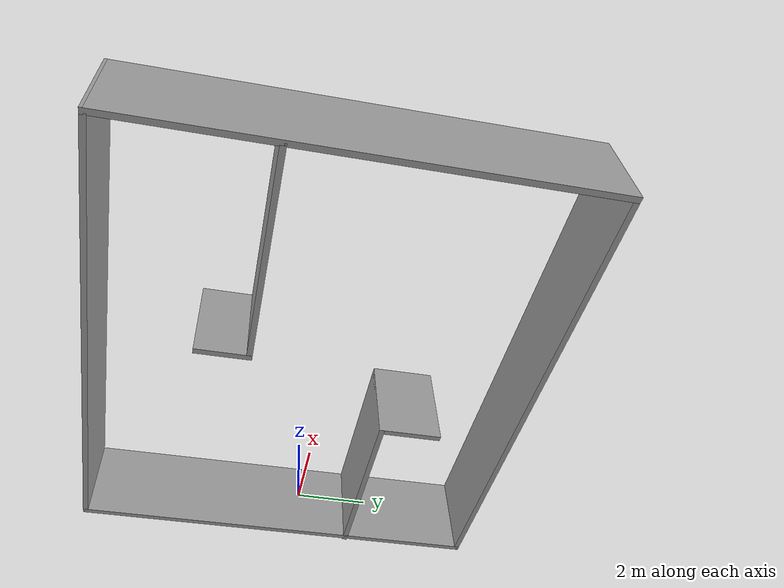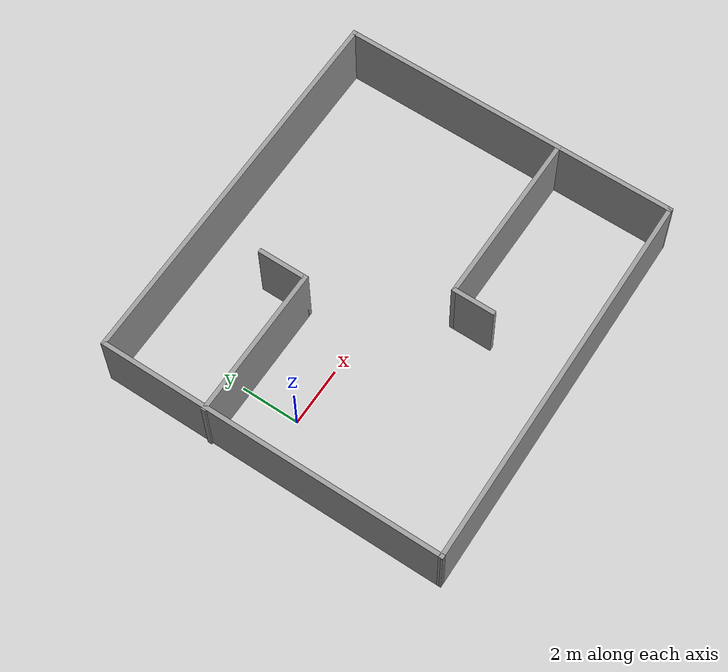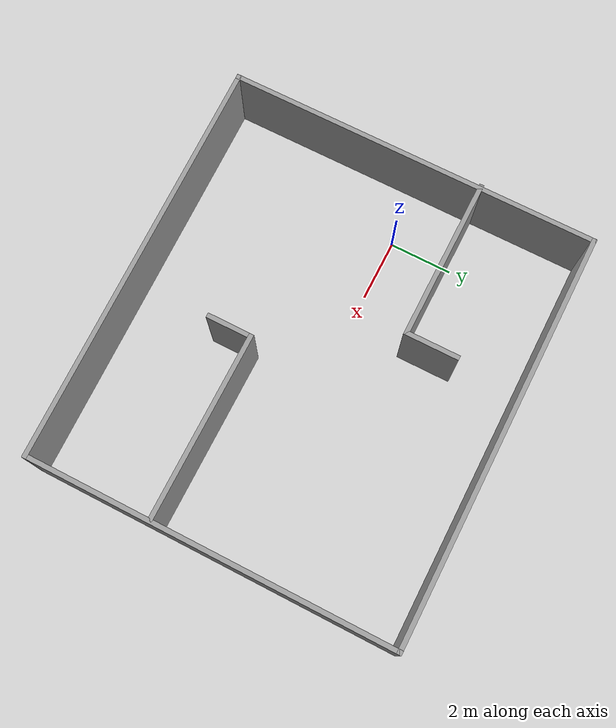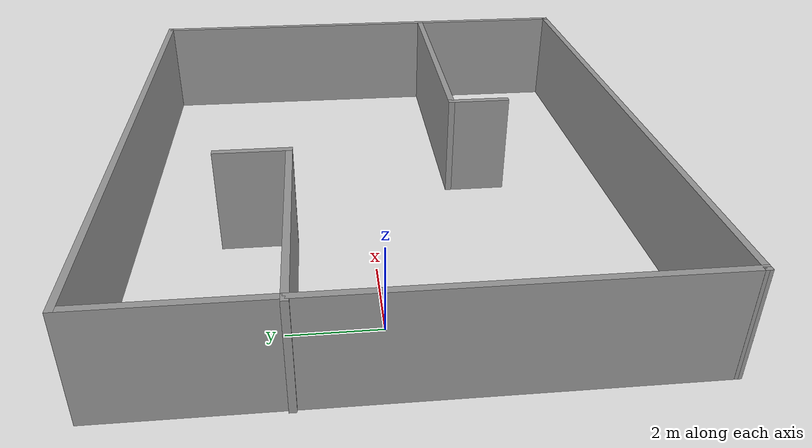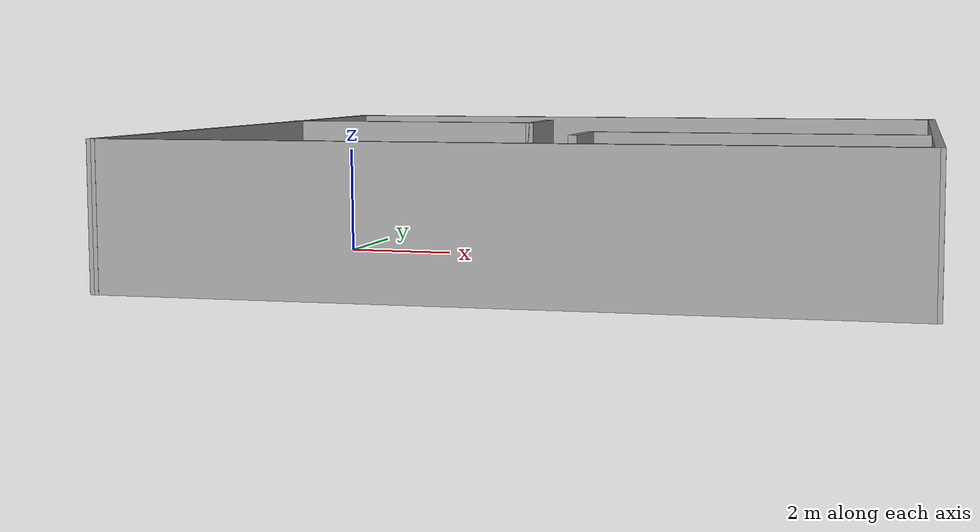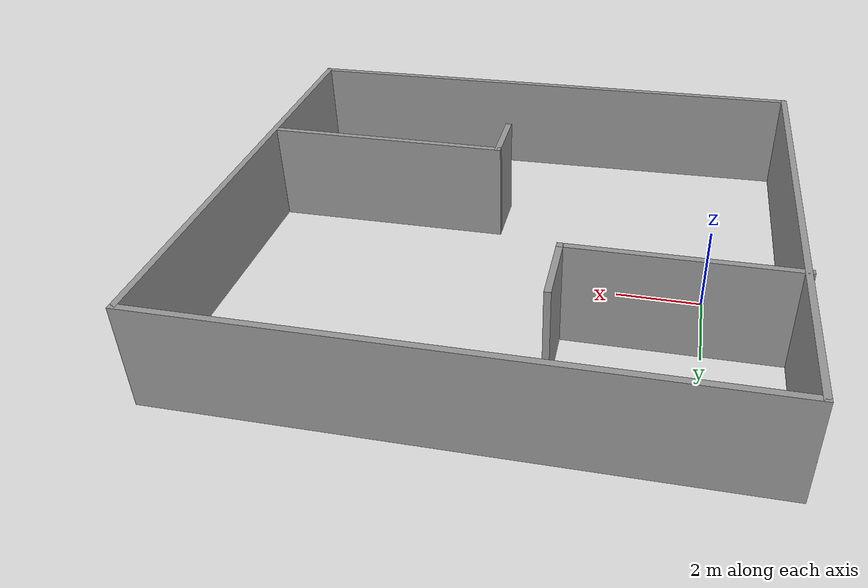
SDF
<?xml version='1.0'?>
<sdf version='1.7'>
  <model name='maailm2.world'>
    <pose>4.653 -0.425708 0 0 -0 0</pose>
    <link name='Wall_0'>
      <collision name='Wall_0_Collision'>
        <geometry>
          <box>
            <size>12 0.15 2.5</size>
          </box>
        </geometry>
        <pose>0 0 1.25 0 -0 0</pose>
      </collision>
      <visual name='Wall_0_Visual'>
        <pose>0 0 1.25 0 -0 0</pose>
        <geometry>
          <box>
            <size>12 0.15 2.5</size>
          </box>
        </geometry>
        <material>
          <script>
            <uri>file://media/materials/scripts/gazebo.material</uri>
            <name>Gazebo/Grey</name>
          </script>
          <ambient>1 1 1 1</ambient>
        </material>
        <meta>
          <layer>0</layer>
        </meta>
      </visual>
      <pose>-6.523 0.000708 0 0 -0 1.5708</pose>
    </link>
    <link name='Wall_1'>
      <collision name='Wall_1_Collision'>
        <geometry>
          <box>
            <size>13.25 0.15 2.5</size>
          </box>
        </geometry>
        <pose>0 0 1.25 0 -0 0</pose>
      </collision>
      <visual name='Wall_1_Visual'>
        <pose>0 0 1.25 0 -0 0</pose>
        <geometry>
          <box>
            <size>13.25 0.15 2.5</size>
          </box>
        </geometry>
        <material>
          <script>
            <uri>file://media/materials/scripts/gazebo.material</uri>
            <name>Gazebo/Grey</name>
          </script>
          <ambient>1 1 1 1</ambient>
        </material>
        <meta>
          <layer>0</layer>
        </meta>
      </visual>
      <pose>0.026998 5.92571 0 0 -0 0</pose>
    </link>
    <link name='Wall_2'>
      <collision name='Wall_2_Collision'>
        <geometry>
          <box>
            <size>11.75 0.15 2.5</size>
          </box>
        </geometry>
        <pose>0 0 1.25 0 -0 0</pose>
      </collision>
      <visual name='Wall_2_Visual'>
        <pose>0 0 1.25 0 -0 0</pose>
        <geometry>
          <box>
            <size>11.75 0.15 2.5</size>
          </box>
        </geometry>
        <material>
          <script>
            <uri>file://media/materials/scripts/gazebo.material</uri>
            <name>Gazebo/Grey</name>
          </script>
          <ambient>1 1 1 1</ambient>
        </material>
        <meta>
          <layer>0</layer>
        </meta>
      </visual>
      <pose>6.577 0.125708 0 0 -0 -1.5708</pose>
    </link>
    <link name='Wall_3'>
      <collision name='Wall_3_Collision'>
        <geometry>
          <box>
            <size>13.2524 0.15 2.5</size>
          </box>
        </geometry>
        <pose>0 0 1.25 0 -0 0</pose>
      </collision>
      <visual name='Wall_3_Visual'>
        <pose>0 0 1.25 0 -0 0</pose>
        <geometry>
          <box>
            <size>13.2524 0.15 2.5</size>
          </box>
        </geometry>
        <material>
          <script>
            <uri>file://media/materials/scripts/gazebo.material</uri>
            <name>Gazebo/Grey</name>
          </script>
          <ambient>1 1 1 1</ambient>
        </material>
        <meta>
          <layer>0</layer>
        </meta>
      </visual>
      <pose>0.026998 -5.79929 0 0 -0 -3.12251</pose>
    </link>
    <link name='Wall_5'>
      <collision name='Wall_5_Collision'>
        <geometry>
          <box>
            <size>5.25 0.15 2.5</size>
          </box>
        </geometry>
        <pose>0 0 1.25 0 -0 0</pose>
      </collision>
      <visual name='Wall_5_Visual'>
        <pose>0 0 1.25 0 -0 0</pose>
        <geometry>
          <box>
            <size>5.25 0.15 2.5</size>
          </box>
        </geometry>
        <material>
          <script>
            <uri>file://media/materials/scripts/gazebo.material</uri>
            <name>Gazebo/Grey</name>
          </script>
          <ambient>1 1 1 1</ambient>
        </material>
        <meta>
          <layer>0</layer>
        </meta>
      </visual>
      <pose>-4.02842 2.23935 0 0 -0 0</pose>
    </link>
    <link name='Wall_6'>
      <collision name='Wall_6_Collision'>
        <geometry>
          <box>
            <size>1.75 0.15 2.5</size>
          </box>
        </geometry>
        <pose>0 0 1.25 0 -0 0</pose>
      </collision>
      <visual name='Wall_6_Visual'>
        <pose>0 0 1.25 0 -0 0</pose>
        <geometry>
          <box>
            <size>1.75 0.15 2.5</size>
          </box>
        </geometry>
        <material>
          <script>
            <uri>file://media/materials/scripts/gazebo.material</uri>
            <name>Gazebo/Grey</name>
          </script>
          <ambient>1 1 1 1</ambient>
        </material>
        <meta>
          <layer>0</layer>
        </meta>
      </visual>
      <pose>-1.47842 3.03935 0 0 -0 1.5708</pose>
    </link>
    <link name='Wall_8'>
      <collision name='Wall_8_Collision'>
        <geometry>
          <box>
            <size>6 0.15 2.5</size>
          </box>
        </geometry>
        <pose>0 0 1.25 0 -0 0</pose>
      </collision>
      <visual name='Wall_8_Visual'>
        <pose>0 0 1.25 0 -0 0</pose>
        <geometry>
          <box>
            <size>6 0.15 2.5</size>
          </box>
        </geometry>
        <material>
          <script>
            <uri>file://media/materials/scripts/gazebo.material</uri>
            <name>Gazebo/Grey</name>
          </script>
          <ambient>1 1 1 1</ambient>
        </material>
        <meta>
          <layer>0</layer>
        </meta>
      </visual>
      <pose>3.58308 -1.70067 0 0 -0 3.14159</pose>
    </link>
    <link name='Wall_9'>
      <collision name='Wall_9_Collision'>
        <geometry>
          <box>
            <size>1.5 0.15 2.5</size>
          </box>
        </geometry>
        <pose>0 0 1.25 0 -0 0</pose>
      </collision>
      <visual name='Wall_9_Visual'>
        <pose>0 0 1.25 0 -0 0</pose>
        <geometry>
          <box>
            <size>1.5 0.15 2.5</size>
          </box>
        </geometry>
        <material>
          <script>
            <uri>file://media/materials/scripts/gazebo.material</uri>
            <name>Gazebo/Grey</name>
          </script>
          <ambient>1 1 1 1</ambient>
        </material>
        <meta>
          <layer>0</layer>
        </meta>
      </visual>
      <pose>0.658082 -2.37567 0 0 -0 -1.5708</pose>
    </link>
    <static>1</static>
  </model>
</sdf>
